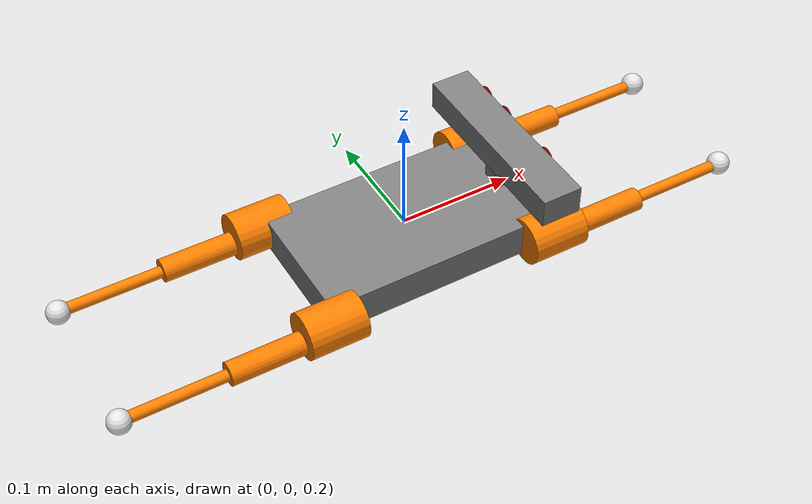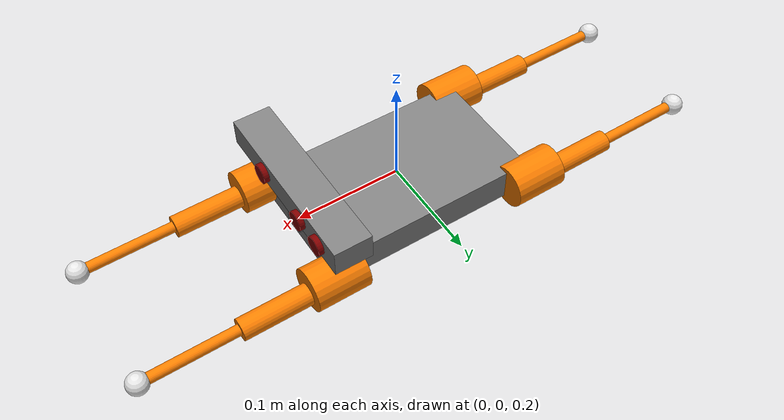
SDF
<?xml version="1.0" ?>
<sdf version='1.5'>
  <model name='LINKS'>
    <plugin name="PacerPlugin" filename="libPacerGazeboPlugin.so"/>
    <pose>0 0 0.19 0 -0 0</pose>
    <link name='BODY0'>
      <pose>0 0 0 0 -0 0</pose>
      <inertial>
        <mass>2.6</mass>
        <inertia>
          <ixx>0.005833</ixx>
          <ixy>0.0</ixy>
          <ixz>-0.0</ixz>
          <iyy>0.003033</iyy>
          <iyz>-0.0</iyz>
          <izz>0.008633</izz>
        </inertia>
      </inertial>

      <visual name='Head'>
        <pose>0.095 0 0.05 0 -0 0</pose>
        <geometry>
          <box>
            <size>0.035 0.17 0.025</size>
          </box>
        </geometry>
        <material>
          <diffuse>0.5 0.5 0.5 1</diffuse>
        </material>
      </visual>
      <visual name='Neck'>
        <pose>0.095 0 0.025 0 -0 0</pose>
        <geometry>
          <box>
            <size>0.02 0.02 0.04</size>
          </box>
        </geometry>
        <material>
          <diffuse>0.5 0.5 0.5 1</diffuse>
        </material>
      </visual>
      <visual name='REye'>
        <pose>0.11 -0.03 0.05 0 1.571 0</pose>
        <geometry>
          <cylinder>
            <radius>0.009</radius>
            <length>0.015</length>
          </cylinder>
        </geometry>
        <material>
          <ambient>0.2 0.2 0.2 1</ambient>
          <diffuse>0.5 0 0 1</diffuse>
          <specular>0.1 0.1 0.1 1</specular>
          <emissive>0 0 0 0</emissive>
        </material>
      </visual>
      <visual name='LEye1'>
        <pose>0.11 0.03 0.05 0 1.571 0</pose>
        <geometry>
          <cylinder>
            <radius>0.009</radius>
            <length>0.015</length>
          </cylinder>
        </geometry>
        <material>
          <ambient>0.2 0.2 0.2 1</ambient>
          <diffuse>0.5 0 0 1</diffuse>
          <specular>0.1 0.1 0.1 1</specular>
          <emissive>0 0 0 0</emissive>
        </material>
      </visual>
      <visual name='LEye2'>
        <pose>0.11 0.06 0.05 0 1.571 0</pose>
        <geometry>
          <cylinder>
            <radius>0.009</radius>
            <length>0.015</length>
          </cylinder>
        </geometry>
        <material>
          <ambient>0.2 0.2 0.2 1</ambient>
          <diffuse>0.5 0 0 1</diffuse>
          <specular>0.1 0.1 0.1 1</specular>
          <emissive>0 0 0 0</emissive>
        </material>
      </visual>

      <visual name='BODY0_visual'>
        <geometry>
          <box>
            <size>0.20 0.12 0.03</size>
          </box>
        </geometry>
        <material>
          <ambient>0.5 0.5 0.5 1</ambient>
          <diffuse>0.5 0.5 0.5 1</diffuse>
          <specular>0.5 0.5 0.5 0</specular>
          <emissive>0.5 0.5 0.5 0</emissive>
        </material>
      </visual>

      <collision name='BODY0_collision'>
        <geometry>
          <box>
            <size>0.20 0.12 0.05</size>
          </box>
        </geometry>
      </collision>

    </link>

  <!-- =============================== LF leg =============================== -->
    <joint name='LF_X_1' type='revolute'>
      <pose>-0.025 0 0 0 0 0</pose>
      <parent>BODY0</parent>
      <child>LF_LEG_1</child>
      <axis>
        <xyz>1 0 0</xyz>
        <limit>
          <lower>-1e6</lower>
          <upper>1e6</upper>
        </limit>
        <dynamics/>
      </axis>

    </joint>

    <link name='LF_LEG_1'>
      <pose>0.1025 0.0625 0 0 0 0</pose>
      <inertial>
        <mass>0.10</mass>
        <inertia>
          <ixx>1.5e-5</ixx>
          <ixy>0.0</ixy>
          <ixz>-0.0</ixz>
          <iyy>2.833e-5</iyy>
          <iyz>-0.0</iyz>
          <izz>2.833e-5</izz>
        </inertia>
      </inertial>

      <visual name='leg1_visual'>
        <pose>0 0 0 0 1.579 0</pose>
        <geometry>
          <cylinder>
            <radius>0.02</radius>
            <length>0.05</length>
          </cylinder>
        </geometry>
        <material>
          <ambient>0.2 0.2 0.2 1</ambient>
          <diffuse>1 0.5 0   1</diffuse>
          <specular>0.1 0.1 0.1 1</specular>
          <emissive>0 0 0 0</emissive>
        </material>
      </visual>

      <collision name='LF_1_collision'>
        <pose>0 0 0 0 1.579 0</pose>
        <geometry>
          <cylinder>
            <radius>0.02</radius>
            <length>0.05</length>
          </cylinder>
        </geometry>
        <surface>
          <restitution_coefficient>0</restitution_coefficient>
          <friction>
            <ode>
              <mu>100</mu>
              <mu2>100</mu2>
            </ode>
          </friction>
        </surface>
      </collision>

      <sensor name='LF_1_contact' type='contact'>
        <contact>
          <collision>LF_1_collision</collision>
        </contact>
        <update_rate>1000</update_rate>
      </sensor>
    </link>

    <joint name='LF_Y_2' type='revolute'>
      <pose>-0.0385 0 0 0 0 0</pose>
      <parent>LF_LEG_1</parent>
      <child>LF_LEG_2</child>
      <axis>
        <xyz>0 1 0</xyz>
        <limit>
          <lower>-1e6</lower>
          <upper>1e6</upper>
        </limit>
        <dynamics/>
      </axis>
    </joint>

    <link name='LF_LEG_2'>
      <pose>0.141 0.0625 -0.005 0 0 0</pose>
      <inertial>
        <mass>0.10</mass>
        <inertia>
          <ixx>1.083e-5</ixx>
          <ixy>0.0</ixy>
          <ixz>-0.0</ixz>
          <iyy>0.0001233</iyy>
          <iyz>-0.0</iyz>
          <izz>0.001275</izz>
        </inertia>
      </inertial>

      <visual name='leg2_visual'>
        <pose>0 0 0 0 1.579 0</pose>
        <geometry>
          <cylinder>
            <radius>0.01</radius>
            <length>0.1</length>
          </cylinder>
        </geometry>
        <material>
          <ambient>0.2 0.2 0.2 1</ambient>
          <diffuse>1 0.5 0   1</diffuse>
          <specular>0.1 0.1 0.1 1</specular>
          <emissive>0 0 0 0</emissive>
        </material>
      </visual>

      <collision name='LF_2_collision'>
        <pose>0 0 0 0 1.579 0</pose>
        <geometry>
          <cylinder>
            <radius>0.01</radius>
            <length>0.1</length>
          </cylinder>
        </geometry>
        <surface>
          <restitution_coefficient>0</restitution_coefficient>
          <friction>
            <ode>
              <mu>100</mu>
              <mu2>100</mu2>
            </ode>
          </friction>
        </surface>
      </collision>

      <sensor name='LF_2_contact' type='contact'>
        <contact>
          <collision>LF_2_collision</collision>
        </contact>
        <update_rate>1000</update_rate>
      </sensor>

    </link>

    <joint name='LF_Y_3' type='revolute'>
      <pose>-0.1 0 0 0 0 0</pose>
      <parent>LF_LEG_2</parent>
      <child>LF_FOOT</child>
      <axis>
        <xyz>0 1 0</xyz>
        <limit>
          <lower>-1e6</lower>
          <upper>1e6</upper>
        </limit>
        <dynamics/>
      </axis>
    </joint>

    <link name='LF_FOOT'>
      <pose>0.2795 0.0625 -0.005 0 0 0</pose>
      <inertial>
        <pose>-0.05 0 0 0 0 0</pose>
        <mass>0.10</mass>
        <inertia>
          <ixx>5e-7</ixx>
          <ixy>-1.215e-10</ixy>
          <ixz>-0.0</ixz>
          <iyy>3.358e-5</iyy>
          <iyz>-0.0</iyz>
          <izz>3.358e-5</izz>
        </inertia>
      </inertial>

      <visual name='leg3_visual'>
        <pose>-0.05 0 0 0 1.579 0</pose>
        <geometry>
          <cylinder>
            <radius>0.005</radius>
            <length>0.1</length>
          </cylinder>
        </geometry>
        <material>
          <ambient>0.2 0.2 0.2 1</ambient>
          <diffuse>1 0.5 0   1</diffuse>
          <specular>0.1 0.1 0.1 1</specular>
          <emissive>0 0 0 0</emissive>
        </material>
      </visual>

      <collision name='LF_3_collision'>
        <pose>-0.05 0 0 0 1.579 0</pose>
        <geometry>
          <cylinder>
            <radius>0.005</radius>
            <length>0.1</length>
          </cylinder>
        </geometry>
        <surface>
          <restitution_coefficient>0</restitution_coefficient>
          <friction>
            <ode>
              <mu>100</mu>
              <mu2>100</mu2>
            </ode>
          </friction>
        </surface>
      </collision>

      <sensor name='LF_3_contact' type='contact'>
        <contact>
          <collision>LF_3_collision</collision>
        </contact>
        <update_rate>1000</update_rate>
      </sensor>

      <visual name='LF_FOOT_visual'>
        <pose>0 0 0 0 0 0</pose>
        <geometry>
          <sphere>
            <radius>0.01</radius>
          </sphere>
        </geometry>
        <material>
          <ambient>0.2 0.2 0.2 1</ambient>
          <diffuse>0.9 0.9 0.9 1</diffuse>
          <specular>0.1 0.1 0.1 1</specular>
          <emissive>0 0 0 0</emissive>
        </material>
      </visual>

      <collision name='LF_FOOT_collision'>
        <pose>0 0 0 0 0 0</pose>
        <geometry>
          <sphere>
            <radius>0.01</radius>
          </sphere>
        </geometry>
        <surface>
          <restitution_coefficient>0</restitution_coefficient>
          <friction>
            <ode>
              <mu>100</mu>
              <mu2>100</mu2>
            </ode>
          </friction>
        </surface>
      </collision>

      <sensor name='LF_FOOT_contact' type='contact'>
        <contact>
          <collision>LF_FOOT_collision</collision>
        </contact>
        <update_rate>1000</update_rate>
      </sensor>
    </link>
    <!-- =============================== RF leg =============================== -->
    <joint name='RF_X_1' type='revolute'>
      <pose>-0.025 0 0 0 0 0</pose>
      <parent>BODY0</parent>
      <child>RF_LEG_1</child>
      <axis>
        <xyz>1 0 0</xyz>
        <limit>
          <lower>-1e6</lower>
          <upper>1e6</upper>
        </limit>
        <dynamics/>
      </axis>

    </joint>

    <link name='RF_LEG_1'>
      <pose>0.1025 -0.0625 0 0 0 0</pose>
      <inertial>
        <mass>0.10</mass>
        <inertia>
          <ixx>1.5e-5</ixx>
          <ixy>0.0</ixy>
          <ixz>-0.0</ixz>
          <iyy>2.833e-5</iyy>
          <iyz>-0.0</iyz>
          <izz>2.833e-5</izz>
        </inertia>
      </inertial>

      <visual name='leg1_visual'>
        <pose>0 0 0 0 1.579 0</pose>
        <geometry>
          <cylinder>
            <radius>0.02</radius>
            <length>0.05</length>
          </cylinder>
        </geometry>
        <material>
          <ambient>0.2 0.2 0.2 1</ambient>
          <diffuse>1 0.5 0   1</diffuse>
          <specular>0.1 0.1 0.1 1</specular>
          <emissive>0 0 0 0</emissive>
        </material>
      </visual>

      <collision name='RF_1_collision'>
        <pose>0 0 0 0 1.579 0</pose>
        <geometry>
          <cylinder>
            <radius>0.02</radius>
            <length>0.05</length>
          </cylinder>
        </geometry>
        <surface>
          <restitution_coefficient>0</restitution_coefficient>
          <friction>
            <ode>
              <mu>100</mu>
              <mu2>100</mu2>
            </ode>
          </friction>
        </surface>
      </collision>

      <sensor name='RF_1_contact' type='contact'>
        <contact>
          <collision>RF_1_collision</collision>
        </contact>
        <update_rate>1000</update_rate>
      </sensor>
    </link>

    <joint name='RF_Y_2' type='revolute'>
      <pose>-0.0385 0 0 0 0 0</pose>
      <parent>RF_LEG_1</parent>
      <child>RF_LEG_2</child>
      <axis>
        <xyz>0 -1 0</xyz>
        <limit>
          <lower>-1e6</lower>
          <upper>1e6</upper>
        </limit>
        <dynamics/>
      </axis>
    </joint>

    <link name='RF_LEG_2'>
      <pose>0.141 -0.0625 -0.005 0 0 0</pose>
      <inertial>
        <mass>0.10</mass>
        <inertia>
          <ixx>1.083e-5</ixx>
          <ixy>0.0</ixy>
          <ixz>-0.0</ixz>
          <iyy>0.0001233</iyy>
          <iyz>-0.0</iyz>
          <izz>0.001275</izz>
        </inertia>
      </inertial>

      <visual name='leg2_visual'>
        <pose>0 0 0 0 1.579 0</pose>
        <geometry>
          <cylinder>
            <radius>0.01</radius>
            <length>0.1</length>
          </cylinder>
        </geometry>
        <material>
          <ambient>0.2 0.2 0.2 1</ambient>
          <diffuse>1 0.5 0   1</diffuse>
          <specular>0.1 0.1 0.1 1</specular>
          <emissive>0 0 0 0</emissive>
        </material>
      </visual>

      <collision name='RF_2_collision'>
        <pose>0 0 0 0 1.579 0</pose>
        <geometry>
          <cylinder>
            <radius>0.01</radius>
            <length>0.1</length>
          </cylinder>
        </geometry>
        <surface>
          <restitution_coefficient>0</restitution_coefficient>
          <friction>
            <ode>
              <mu>100</mu>
              <mu2>100</mu2>
            </ode>
          </friction>
        </surface>
      </collision>

      <sensor name='RF_2_contact' type='contact'>
        <contact>
          <collision>RF_2_collision</collision>
        </contact>
        <update_rate>1000</update_rate>
      </sensor>

    </link>

    <joint name='RF_Y_3' type='revolute'>
      <pose>-0.1 0 0 0 0 0</pose>
      <parent>RF_LEG_2</parent>
      <child>RF_FOOT</child>
      <axis>
        <xyz>0 -1 0</xyz>
        <limit>
          <lower>-1e6</lower>
          <upper>1e6</upper>
        </limit>
        <dynamics/>
      </axis>
    </joint>

    <link name='RF_FOOT'>
      <pose>0.2795 -0.0625 -0.005 0 0 0</pose>
      <inertial>
        <pose>-0.05 0 0 0 0 0</pose>
        <mass>0.10</mass>
        <inertia>
          <ixx>5e-7</ixx>
          <ixy>-1.215e-10</ixy>
          <ixz>-0.0</ixz>
          <iyy>3.358e-5</iyy>
          <iyz>-0.0</iyz>
          <izz>3.358e-5</izz>
        </inertia>
      </inertial>

      <visual name='leg3_visual'>
        <pose>-0.05 0 0 0 1.579 0</pose>
        <geometry>
          <cylinder>
            <radius>0.005</radius>
            <length>0.1</length>
          </cylinder>
        </geometry>
        <material>
          <ambient>0.2 0.2 0.2 1</ambient>
          <diffuse>1 0.5 0   1</diffuse>
          <specular>0.1 0.1 0.1 1</specular>
          <emissive>0 0 0 0</emissive>
        </material>
      </visual>

      <collision name='RF_3_collision'>
        <pose>-0.05 0 0 0 1.579 0</pose>
        <geometry>
          <cylinder>
            <radius>0.005</radius>
            <length>0.1</length>
          </cylinder>
        </geometry>
        <surface>
          <restitution_coefficient>0</restitution_coefficient>
          <friction>
            <ode>
              <mu>100</mu>
              <mu2>100</mu2>
            </ode>
          </friction>
        </surface>
      </collision>

      <sensor name='RF_3_contact' type='contact'>
        <contact>
          <collision>RF_3_collision</collision>
        </contact>
        <update_rate>1000</update_rate>
      </sensor>

      <visual name='RF_FOOT_visual'>
        <pose>0 0 0 0 0 0</pose>
        <geometry>
          <sphere>
            <radius>0.01</radius>
          </sphere>
        </geometry>
        <material>
          <ambient>0.2 0.2 0.2 1</ambient>
          <diffuse>0.9 0.9 0.9 1</diffuse>
          <specular>0.1 0.1 0.1 1</specular>
          <emissive>0 0 0 0</emissive>
        </material>
      </visual>

      <collision name='RF_FOOT_collision'>
        <pose>0 0 0 0 0 0</pose>
        <geometry>
          <sphere>
            <radius>0.01</radius>
          </sphere>
        </geometry>
        <surface>
          <restitution_coefficient>0</restitution_coefficient>
          <friction>
            <ode>
              <mu>100</mu>
              <mu2>100</mu2>
            </ode>
          </friction>
        </surface>
      </collision>

      <sensor name='RF_FOOT_contact' type='contact'>
        <contact>
          <collision>RF_FOOT_collision</collision>
        </contact>
        <update_rate>1000</update_rate>
      </sensor>
    </link>
    <!-- =============================== LH leg =============================== -->
    <joint name='LH_X_1' type='revolute'>
      <pose>0.025 0 0 0 0 0</pose>
      <parent>BODY0</parent>
      <child>LH_LEG_1</child>
      <axis>
        <xyz>-1 0 0</xyz>
        <limit>
          <lower>-1e6</lower>
          <upper>1e6</upper>
        </limit>
        <dynamics/>
      </axis>

    </joint>

    <link name='LH_LEG_1'>
      <pose>-0.1025 0.0625 0 0 0 0</pose>
      <inertial>
        <mass>0.10</mass>
        <inertia>
          <ixx>1.5e-5</ixx>
          <ixy>0.0</ixy>
          <ixz>-0.0</ixz>
          <iyy>2.833e-5</iyy>
          <iyz>-0.0</iyz>
          <izz>2.833e-5</izz>
        </inertia>
      </inertial>

      <visual name='leg1_visual'>
        <pose>0 0 0 0 1.579 0</pose>
        <geometry>
          <cylinder>
            <radius>0.02</radius>
            <length>0.05</length>
          </cylinder>
        </geometry>
        <material>
          <ambient>0.2 0.2 0.2 1</ambient>
          <diffuse>1 0.5 0   1</diffuse>
          <specular>0.1 0.1 0.1 1</specular>
          <emissive>0 0 0 0</emissive>
        </material>
      </visual>

      <collision name='LH_1_collision'>
        <pose>0 0 0 0 1.579 0</pose>
        <geometry>
          <cylinder>
            <radius>0.02</radius>
            <length>0.05</length>
          </cylinder>
        </geometry>
        <surface>
          <restitution_coefficient>0</restitution_coefficient>
          <friction>
            <ode>
              <mu>100</mu>
              <mu2>100</mu2>
            </ode>
          </friction>
        </surface>
      </collision>

      <sensor name='LH_1_contact' type='contact'>
        <contact>
          <collision>LH_1_collision</collision>
        </contact>
        <update_rate>1000</update_rate>
      </sensor>
    </link>

    <joint name='LH_Y_2' type='revolute'>
      <pose>0.0385 0 0 0 0 0</pose>
      <parent>LH_LEG_1</parent>
      <child>LH_LEG_2</child>
      <axis>
        <xyz>0 1 0</xyz>
        <limit>
          <lower>-1e6</lower>
          <upper>1e6</upper>
        </limit>
        <dynamics/>
      </axis>
    </joint>

    <link name='LH_LEG_2'>
      <pose>-0.141 0.0625 -0.0065 0 0 0</pose>
      <inertial>
        <mass>0.10</mass>
        <inertia>
          <ixx>1.083e-5</ixx>
          <ixy>0.0</ixy>
          <ixz>-0.0</ixz>
          <iyy>0.0001233</iyy>
          <iyz>-0.0</iyz>
          <izz>0.001275</izz>
        </inertia>
      </inertial>

      <visual name='leg2_visual'>
        <pose>0 0 0 0 1.579 0</pose>
        <geometry>
          <cylinder>
            <radius>0.01</radius>
            <length>0.1</length>
          </cylinder>
        </geometry>
        <material>
          <ambient>0.2 0.2 0.2 1</ambient>
          <diffuse>1 0.5 0   1</diffuse>
          <specular>0.1 0.1 0.1 1</specular>
          <emissive>0 0 0 0</emissive>
        </material>
      </visual>

      <collision name='LH_2_collision'>
        <pose>0 0 0 0 1.579 0</pose>
        <geometry>
          <cylinder>
            <radius>0.01</radius>
            <length>0.1</length>
          </cylinder>
        </geometry>
        <surface>
          <restitution_coefficient>0</restitution_coefficient>
          <friction>
            <ode>
              <mu>100</mu>
              <mu2>100</mu2>
            </ode>
          </friction>
        </surface>
      </collision>

      <sensor name='LH_2_contact' type='contact'>
        <contact>
          <collision>LH_2_collision</collision>
        </contact>
        <update_rate>1000</update_rate>
      </sensor>

    </link>

    <joint name='LH_Y_3' type='revolute'>
      <pose>0.1 0 0 0 0 0</pose>
      <parent>LH_LEG_2</parent>
      <child>LH_FOOT</child>
      <axis>
        <xyz>0 1 0</xyz>
        <limit>
          <lower>-1e6</lower>
          <upper>1e6</upper>
        </limit>
        <dynamics/>
      </axis>
    </joint>

    <link name='LH_FOOT'>
      <pose>-0.2795 0.0625 -0.0065 0 0 0</pose>
      <inertial>
        <pose>-0.05 0 0 0 0 0</pose>
        <mass>0.10</mass>
        <inertia>
          <ixx>5e-7</ixx>
          <ixy>-1.215e-10</ixy>
          <ixz>-0.0</ixz>
          <iyy>3.358e-5</iyy>
          <iyz>-0.0</iyz>
          <izz>3.358e-5</izz>
        </inertia>
      </inertial>

      <visual name='leg3_visual'>
        <pose>0.05 0 0 0 1.579 0</pose>
        <geometry>
          <cylinder>
            <radius>0.005</radius>
            <length>0.1</length>
          </cylinder>
        </geometry>
        <material>
          <ambient>0.2 0.2 0.2 1</ambient>
          <diffuse>1 0.5 0   1</diffuse>
          <specular>0.1 0.1 0.1 1</specular>
          <emissive>0 0 0 0</emissive>
        </material>
      </visual>

      <collision name='LH_3_collision'>
        <pose>0.05 0 0 0 1.579 0</pose>
        <geometry>
          <cylinder>
            <radius>0.005</radius>
            <length>0.1</length>
          </cylinder>
        </geometry>
        <surface>
          <restitution_coefficient>0</restitution_coefficient>
          <friction>
            <ode>
              <mu>100</mu>
              <mu2>100</mu2>
            </ode>
          </friction>
        </surface>
      </collision>

      <sensor name='LH_3_contact' type='contact'>
        <contact>
          <collision>LH_3_collision</collision>
        </contact>
        <update_rate>1000</update_rate>
      </sensor>

      <visual name='LH_FOOT_visual'>
        <pose>0 0 0 0 0 0</pose>
        <geometry>
          <sphere>
            <radius>0.01</radius>
          </sphere>
        </geometry>
        <material>
          <ambient>0.2 0.2 0.2 1</ambient>
          <diffuse>0.9 0.9 0.9 1</diffuse>
          <specular>0.1 0.1 0.1 1</specular>
          <emissive>0 0 0 0</emissive>
        </material>
      </visual>

      <collision name='LH_FOOT_collision'>
        <pose>0 0 0 0 0 0</pose>
        <geometry>
          <sphere>
            <radius>0.01</radius>
          </sphere>
        </geometry>
        <surface>
          <restitution_coefficient>0</restitution_coefficient>
          <friction>
            <ode>
              <mu>100</mu>
              <mu2>100</mu2>
            </ode>
          </friction>
        </surface>
      </collision>

      <sensor name='LH_FOOT_contact' type='contact'>
        <contact>
          <collision>LH_FOOT_collision</collision>
        </contact>
        <update_rate>1000</update_rate>
      </sensor>
    </link>
    <!-- =============================== RH leg =============================== -->
    <joint name='RH_X_1' type='revolute'>
      <pose>0.025 0 0 0 0 0</pose>
      <parent>BODY0</parent>
      <child>RH_LEG_1</child>
      <axis>
        <xyz>-1 0 0</xyz>
        <limit>
          <lower>-1e6</lower>
          <upper>1e6</upper>
        </limit>
        <dynamics/>
      </axis>

    </joint>

    <link name='RH_LEG_1'>
      <pose>-0.1025 -0.0625 0 0 0 0</pose>
      <inertial>
        <mass>0.10</mass>
        <inertia>
          <ixx>1.5e-5</ixx>
          <ixy>0.0</ixy>
          <ixz>-0.0</ixz>
          <iyy>2.833e-5</iyy>
          <iyz>-0.0</iyz>
          <izz>2.833e-5</izz>
        </inertia>
      </inertial>

      <visual name='leg1_visual'>
        <pose>0 0 0 0 1.579 0</pose>
        <geometry>
          <cylinder>
            <radius>0.02</radius>
            <length>0.05</length>
          </cylinder>
        </geometry>
        <material>
          <ambient>0.2 0.2 0.2 1</ambient>
          <diffuse>1 0.5 0   1</diffuse>
          <specular>0.1 0.1 0.1 1</specular>
          <emissive>0 0 0 0</emissive>
        </material>
      </visual>

      <collision name='RH_1_collision'>
        <pose>0 0 0 0 1.579 0</pose>
        <geometry>
          <cylinder>
            <radius>0.02</radius>
            <length>0.05</length>
          </cylinder>
        </geometry>
        <surface>
          <restitution_coefficient>0</restitution_coefficient>
          <friction>
            <ode>
              <mu>100</mu>
              <mu2>100</mu2>
            </ode>
          </friction>
        </surface>
      </collision>

      <sensor name='RH_1_contact' type='contact'>
        <contact>
          <collision>RH_1_collision</collision>
        </contact>
        <update_rate>1000</update_rate>
      </sensor>
    </link>

    <joint name='RH_Y_2' type='revolute'>
      <pose>0.0385 0 0 0 0 0</pose>
      <parent>RH_LEG_1</parent>
      <child>RH_LEG_2</child>
      <axis>
        <xyz>0 -1 0</xyz>
        <limit>
          <lower>-1e6</lower>
          <upper>1e6</upper>
        </limit>
        <dynamics/>
      </axis>
    </joint>

    <link name='RH_LEG_2'>
      <pose>-0.141 -0.0625 -0.0065 0 0 0</pose>
      <inertial>
        <mass>0.10</mass>
        <inertia>
          <ixx>1.083e-5</ixx>
          <ixy>0.0</ixy>
          <ixz>-0.0</ixz>
          <iyy>0.0001233</iyy>
          <iyz>-0.0</iyz>
          <izz>0.001275</izz>
        </inertia>
      </inertial>

      <visual name='leg2_visual'>
        <pose>0 0 0 0 1.579 0</pose>
        <geometry>
          <cylinder>
            <radius>0.01</radius>
            <length>0.1</length>
          </cylinder>
        </geometry>
        <material>
          <ambient>0.2 0.2 0.2 1</ambient>
          <diffuse>1 0.5 0   1</diffuse>
          <specular>0.1 0.1 0.1 1</specular>
          <emissive>0 0 0 0</emissive>
        </material>
      </visual>

      <collision name='RH_2_collision'>
        <pose>0 0 0 0 1.579 0</pose>
        <geometry>
          <cylinder>
            <radius>0.01</radius>
            <length>0.1</length>
          </cylinder>
        </geometry>
        <surface>
          <restitution_coefficient>0</restitution_coefficient>
          <friction>
            <ode>
              <mu>100</mu>
              <mu2>100</mu2>
            </ode>
          </friction>
        </surface>
      </collision>

      <sensor name='RH_2_contact' type='contact'>
        <contact>
          <collision>RH_2_collision</collision>
        </contact>
        <update_rate>1000</update_rate>
      </sensor>

    </link>

    <joint name='RH_Y_3' type='revolute'>
      <pose>0.1 0 0 0 0 0</pose>
      <parent>RH_LEG_2</parent>
      <child>RH_FOOT</child>
      <axis>
        <xyz>0 -1 0</xyz>
        <limit>
          <lower>-1e6</lower>
          <upper>1e6</upper>
        </limit>
        <dynamics/>
      </axis>
    </joint>

    <link name='RH_FOOT'>
      <pose>-0.2795 -0.0625 -0.0065 0 0 0</pose>
      <inertial>
        <pose>-0.05 0 0 0 0 0</pose>
        <mass>0.10</mass>
        <inertia>
          <ixx>5e-7</ixx>
          <ixy>-1.215e-10</ixy>
          <ixz>-0.0</ixz>
          <iyy>3.358e-5</iyy>
          <iyz>-0.0</iyz>
          <izz>3.358e-5</izz>
        </inertia>
      </inertial>

      <visual name='leg3_visual'>
        <pose>0.05 0 0 0 1.579 0</pose>
        <geometry>
          <cylinder>
            <radius>0.005</radius>
            <length>0.1</length>
          </cylinder>
        </geometry>
        <material>
          <ambient>0.2 0.2 0.2 1</ambient>
          <diffuse>1 0.5 0   1</diffuse>
          <specular>0.1 0.1 0.1 1</specular>
          <emissive>0 0 0 0</emissive>
        </material>
      </visual>

      <collision name='RH_3_collision'>
        <pose>0.05 0 0 0 1.579 0</pose>
        <geometry>
          <cylinder>
            <radius>0.005</radius>
            <length>0.1</length>
          </cylinder>
        </geometry>
        <surface>
          <restitution_coefficient>0</restitution_coefficient>
          <friction>
            <ode>
              <mu>100</mu>
              <mu2>100</mu2>
            </ode>
          </friction>
        </surface>
      </collision>

      <sensor name='RH_3_contact' type='contact'>
        <contact>
          <collision>RH_3_collision</collision>
        </contact>
        <update_rate>1000</update_rate>
      </sensor>

      <visual name='RH_FOOT_visual'>
        <pose>0 0 0 0 0 0</pose>
        <geometry>
          <sphere>
            <radius>0.01</radius>
          </sphere>
        </geometry>
        <material>
          <ambient>0.2 0.2 0.2 1</ambient>
          <diffuse>0.9 0.9 0.9 1</diffuse>
          <specular>0.1 0.1 0.1 1</specular>
          <emissive>0 0 0 0</emissive>
        </material>
      </visual>

      <collision name='RH_FOOT_collision'>
        <pose>0 0 0 0 0 0</pose>
        <geometry>
          <sphere>
            <radius>0.01</radius>
          </sphere>
        </geometry>
        <surface>
          <restitution_coefficient>0</restitution_coefficient>
          <friction>
            <ode>
              <mu>100</mu>
              <mu2>100</mu2>
            </ode>
          </friction>
        </surface>
      </collision>

      <sensor name='RH_FOOT_contact' type='contact'>
        <contact>
          <collision>RH_FOOT_collision</collision>
        </contact>
        <update_rate>1000</update_rate>
      </sensor>
    </link>
  </model>
</sdf>
